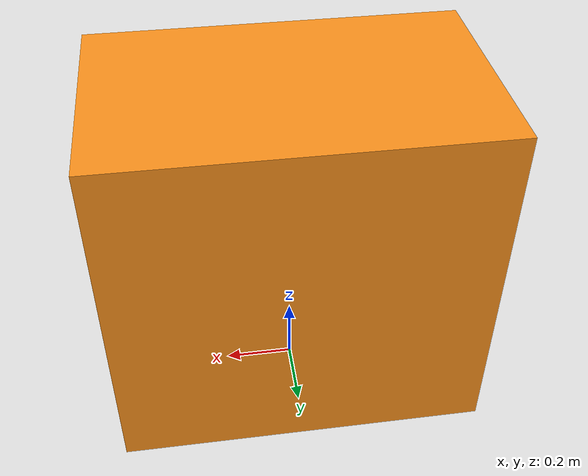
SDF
<?xml version='1.0'?>
<sdf version='1.7'>
  <model name='container'>
    <pose>0.0 0.0 0.0 0.0 0.0 0.0</pose>

    <link name='link_0'>

      <inertial>
        <mass>1</mass>
        <inertia>
          <ixx>0.166667</ixx>
          <ixy>0</ixy>
          <ixz>0</ixz>
          <iyy>0.166667</iyy>
          <iyz>0</iyz>
          <izz>0.166667</izz>
        </inertia>
        <pose>0 0 0 0 -0 0</pose>
      </inertial>

      <gravity>0</gravity>
      <kinematic>1</kinematic>
      <visual name='visual'>
        <pose>0 0 0.5 0 -0 0</pose>
        <geometry>
          <box>
            <size>1.05 0.65 1</size>
          </box>
        </geometry>
        <material>
          <script>
            <uri>file://media/materials/scripts/gazebo.material</uri>
            <name>Gazebo/Orange</name>
          </script>
        </material>
      </visual>

      <collision name='collision'>
        <pose>0 0 0.5 0 -0 0</pose>
        <geometry>
          <box>
            <size>1.05 0.65 1</size>
          </box>
        </geometry>
      </collision>
    </link>
  </model>
</sdf>
